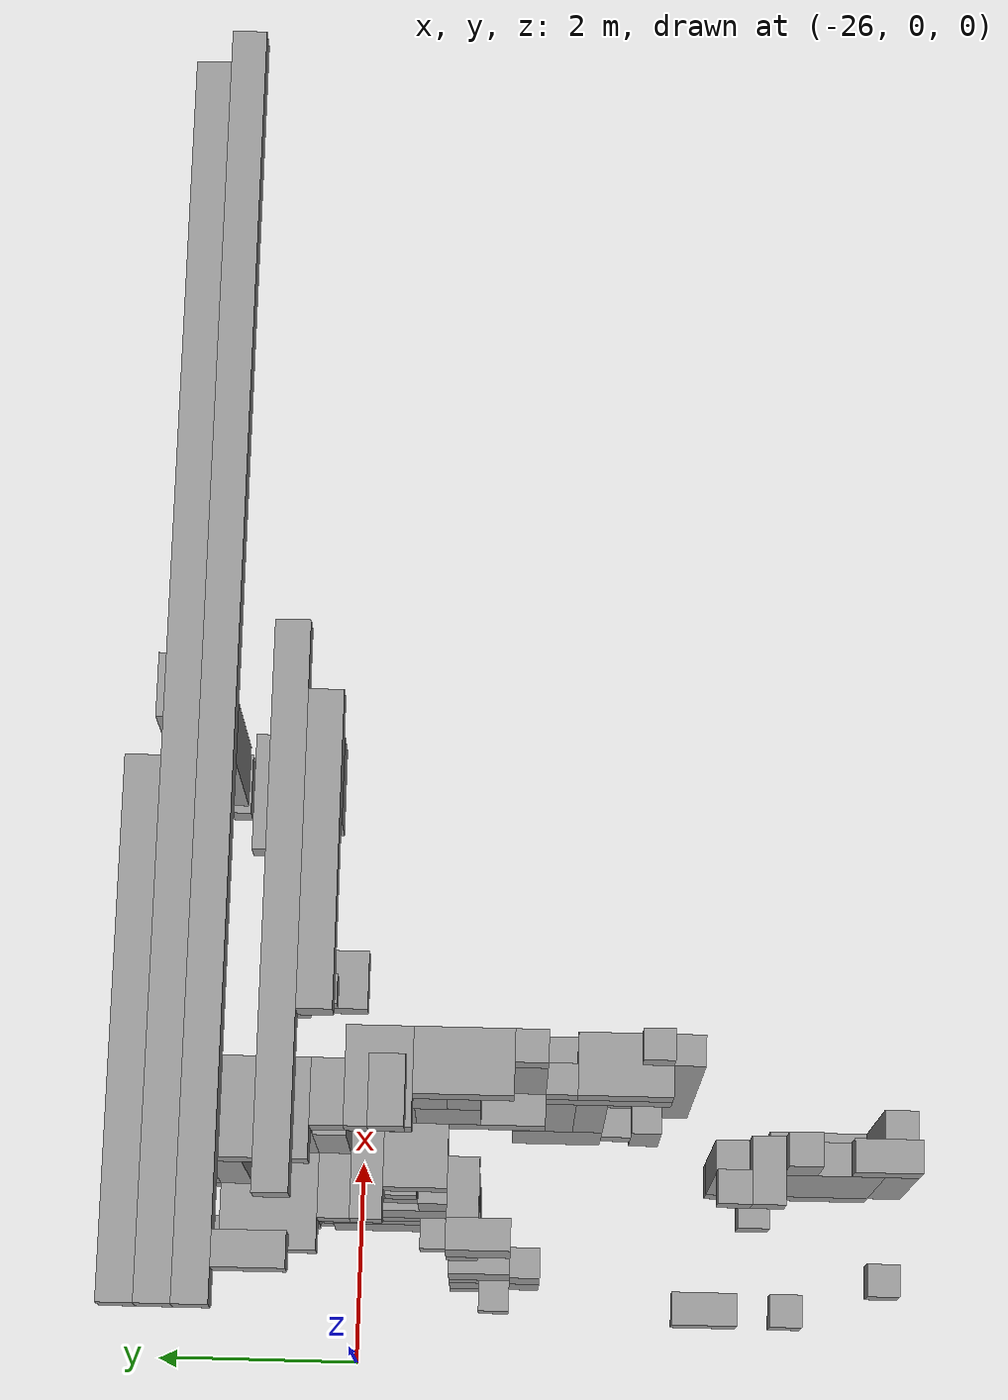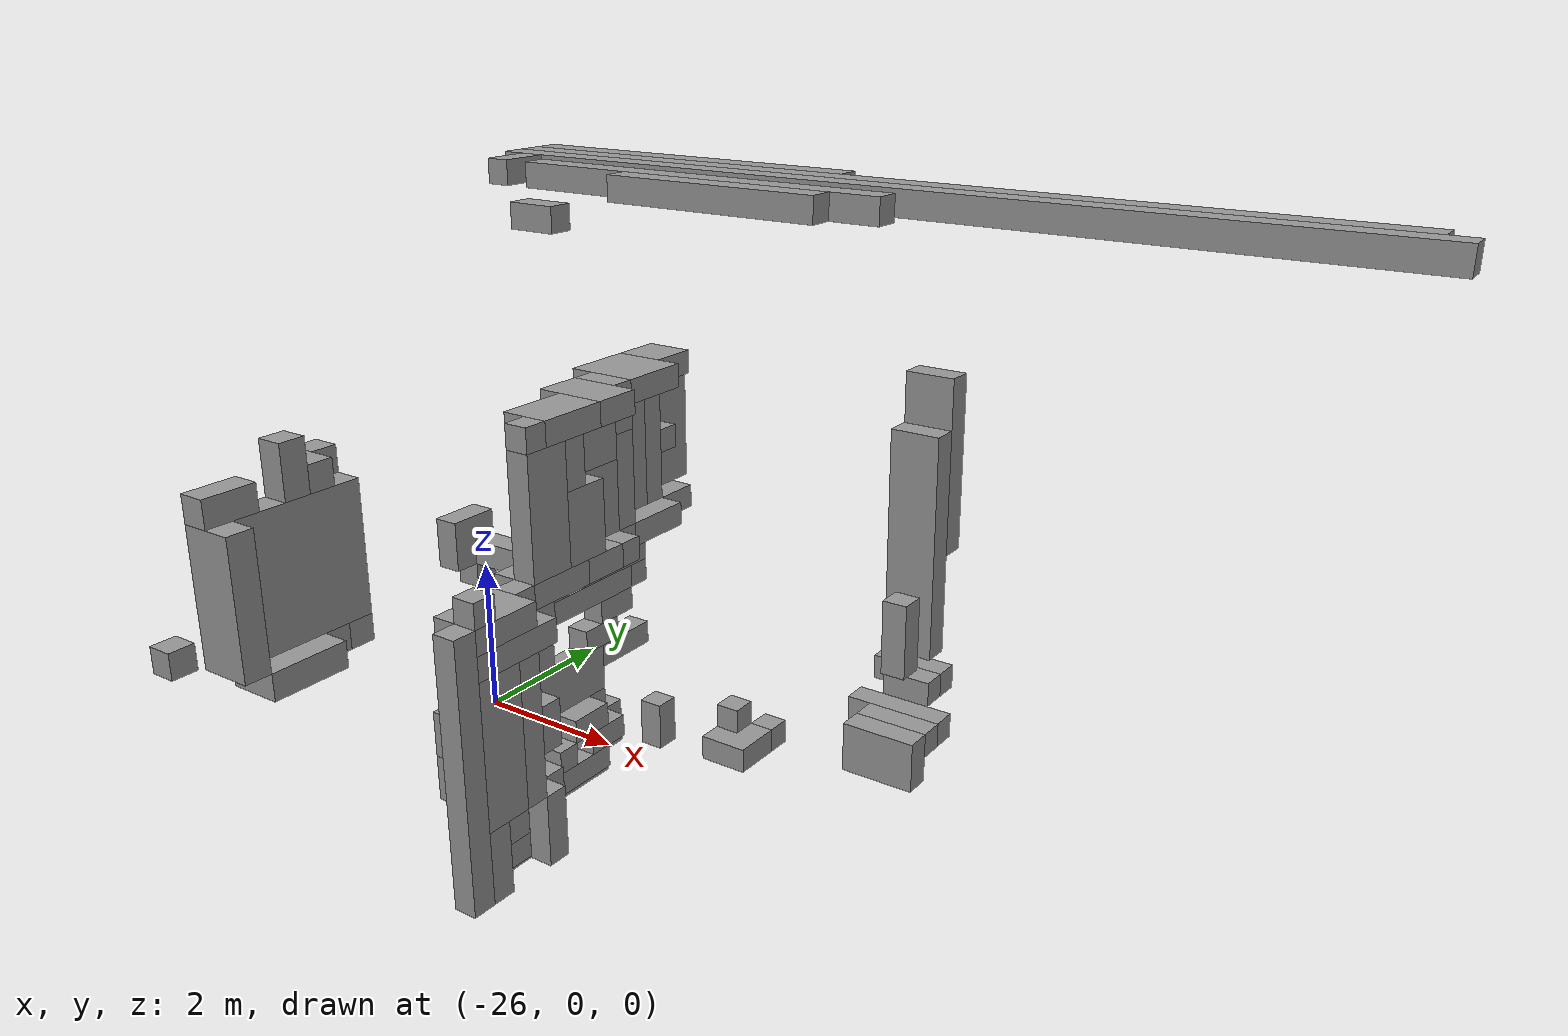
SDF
<sdf version="1.6">
 <world name="bt_world">
  <include><uri>model://sun</uri></include>
  <model name="obstacle_213">
   <static>true</static>
   <pose>-20.55 1.05 7.05 0 0 0</pose>
   <link name="link">
    <collision name="collision"><geometry><box><size>11.1 0.3 0.3</size></box></geometry></collision>
    <visual name="visual">
     <geometry><box><size>11.1 0.3 0.3</size></box></geometry>
     <material><ambient>0.5 0.5 0.5 1</ambient><diffuse>0.6 0.6 0.6 1</diffuse></material>
    </visual>
   </link>
  </model>
  <model name="obstacle_214">
   <static>true</static>
   <pose>-20.7 1.3499999999999999 7.05 0 0 0</pose>
   <link name="link">
    <collision name="collision">
     <geometry><box><size>10.799999999999999 0.3 0.3</size></box></geometry>
    </collision>
    <visual name="visual">
     <geometry><box><size>10.799999999999999 0.3 0.3</size></box></geometry>
     <material><ambient>0.5 0.5 0.5 1</ambient><diffuse>0.6 0.6 0.6 1</diffuse></material>
    </visual>
   </link>
  </model>
  <model name="obstacle_215">
   <static>true</static>
   <pose>-23.849999999999998 1.65 7.05 0 0 0</pose>
   <link name="link">
    <collision name="collision"><geometry><box><size>4.5 0.3 0.3</size></box></geometry></collision>
    <visual name="visual">
     <geometry><box><size>4.5 0.3 0.3</size></box></geometry>
     <material><ambient>0.5 0.5 0.5 1</ambient><diffuse>0.6 0.6 0.6 1</diffuse></material>
    </visual>
   </link>
  </model>
  <model name="obstacle_225">
   <static>true</static>
   <pose>-25.65 -4.05 2.85 0 0 0</pose>
   <link name="link">
    <collision name="collision"><geometry><box><size>0.3 0.3 0.3</size></box></geometry></collision>
    <visual name="visual">
     <geometry><box><size>0.3 0.3 0.3</size></box></geometry>
     <material><ambient>0.5 0.5 0.5 1</ambient><diffuse>0.6 0.6 0.6 1</diffuse></material>
    </visual>
   </link>
  </model>
  <model name="obstacle_226">
   <static>true</static>
   <pose>-25.65 -3.3 2.85 0 0 0</pose>
   <link name="link">
    <collision name="collision"><geometry><box><size>0.3 0.6 0.3</size></box></geometry></collision>
    <visual name="visual">
     <geometry><box><size>0.3 0.6 0.3</size></box></geometry>
     <material><ambient>0.5 0.5 0.5 1</ambient><diffuse>0.6 0.6 0.6 1</diffuse></material>
    </visual>
   </link>
  </model>
  <model name="obstacle_227">
   <static>true</static>
   <pose>-25.65 0.6 7.05 0 0 0</pose>
   <link name="link">
    <collision name="collision"><geometry><box><size>0.3 0.6 0.3</size></box></geometry></collision>
    <visual name="visual">
     <geometry><box><size>0.3 0.6 0.3</size></box></geometry>
     <material><ambient>0.5 0.5 0.5 1</ambient><diffuse>0.6 0.6 0.6 1</diffuse></material>
    </visual>
   </link>
  </model>
  <model name="obstacle_239">
   <static>true</static>
   <pose>-25.349999999999998 -4.95 2.85 0 0 0</pose>
   <link name="link">
    <collision name="collision"><geometry><box><size>0.3 0.3 0.3</size></box></geometry></collision>
    <visual name="visual">
     <geometry><box><size>0.3 0.3 0.3</size></box></geometry>
     <material><ambient>0.5 0.5 0.5 1</ambient><diffuse>0.6 0.6 0.6 1</diffuse></material>
    </visual>
   </link>
  </model>
  <model name="obstacle_240">
   <static>true</static>
   <pose>-25.2 -1.3499999999999999 0.44999999999999996 0 0 0</pose>
   <link name="link">
    <collision name="collision"><geometry><box><size>0.6 0.3 0.3</size></box></geometry></collision>
    <visual name="visual">
     <geometry><box><size>0.6 0.3 0.3</size></box></geometry>
     <material><ambient>0.5 0.5 0.5 1</ambient><diffuse>0.6 0.6 0.6 1</diffuse></material>
    </visual>
   </link>
  </model>
  <model name="obstacle_257">
   <static>true</static>
   <pose>-25.05 -1.3499999999999999 0.0 0 0 0</pose>
   <link name="link">
    <collision name="collision">
     <geometry><box><size>0.3 0.8999999999999999 0.6</size></box></geometry>
    </collision>
    <visual name="visual">
     <geometry><box><size>0.3 0.8999999999999999 0.6</size></box></geometry>
     <material><ambient>0.5 0.5 0.5 1</ambient><diffuse>0.6 0.6 0.6 1</diffuse></material>
    </visual>
   </link>
  </model>
  <model name="obstacle_258">
   <static>true</static>
   <pose>-25.05 -1.65 0.6 0 0 0</pose>
   <link name="link">
    <collision name="collision"><geometry><box><size>0.3 0.3 0.6</size></box></geometry></collision>
    <visual name="visual">
     <geometry><box><size>0.3 0.3 0.6</size></box></geometry>
     <material><ambient>0.5 0.5 0.5 1</ambient><diffuse>0.6 0.6 0.6 1</diffuse></material>
    </visual>
   </link>
  </model>
  <model name="obstacle_259">
   <static>true</static>
   <pose>-25.05 -1.2 -0.44999999999999996 0 0 0</pose>
   <link name="link">
    <collision name="collision"><geometry><box><size>0.3 0.6 0.3</size></box></geometry></collision>
    <visual name="visual">
     <geometry><box><size>0.3 0.6 0.3</size></box></geometry>
     <material><ambient>0.5 0.5 0.5 1</ambient><diffuse>0.6 0.6 0.6 1</diffuse></material>
    </visual>
   </link>
  </model>
  <model name="obstacle_260">
   <static>true</static>
   <pose>-25.05 -1.2 0.8999999999999999 0 0 0</pose>
   <link name="link">
    <collision name="collision"><geometry><box><size>0.3 0.6 0.6</size></box></geometry></collision>
    <visual name="visual">
     <geometry><box><size>0.3 0.6 0.6</size></box></geometry>
     <material><ambient>0.5 0.5 0.5 1</ambient><diffuse>0.6 0.6 0.6 1</diffuse></material>
    </visual>
   </link>
  </model>
  <model name="obstacle_261">
   <static>true</static>
   <pose>-25.05 -1.2 3.0 0 0 0</pose>
   <link name="link">
    <collision name="collision"><geometry><box><size>0.3 0.6 0.6</size></box></geometry></collision>
    <visual name="visual">
     <geometry><box><size>0.3 0.6 0.6</size></box></geometry>
     <material><ambient>0.5 0.5 0.5 1</ambient><diffuse>0.6 0.6 0.6 1</diffuse></material>
    </visual>
   </link>
  </model>
  <model name="obstacle_262">
   <static>true</static>
   <pose>-24.75 -1.05 0.44999999999999996 0 0 0</pose>
   <link name="link">
    <collision name="collision">
     <geometry><box><size>0.8999999999999999 0.3 0.3</size></box></geometry>
    </collision>
    <visual name="visual">
     <geometry><box><size>0.8999999999999999 0.3 0.3</size></box></geometry>
     <material><ambient>0.5 0.5 0.5 1</ambient><diffuse>0.6 0.6 0.6 1</diffuse></material>
    </visual>
   </link>
  </model>
  <model name="obstacle_263">
   <static>true</static>
   <pose>-25.05 -1.05 2.55 0 0 0</pose>
   <link name="link">
    <collision name="collision"><geometry><box><size>0.3 0.3 0.3</size></box></geometry></collision>
    <visual name="visual">
     <geometry><box><size>0.3 0.3 0.3</size></box></geometry>
     <material><ambient>0.5 0.5 0.5 1</ambient><diffuse>0.6 0.6 0.6 1</diffuse></material>
    </visual>
   </link>
  </model>
  <model name="obstacle_264">
   <static>true</static>
   <pose>-24.45 0.75 2.85 0 0 0</pose>
   <link name="link">
    <collision name="collision">
     <geometry><box><size>1.5 0.8999999999999999 0.3</size></box></geometry>
    </collision>
    <visual name="visual">
     <geometry><box><size>1.5 0.8999999999999999 0.3</size></box></geometry>
     <material><ambient>0.5 0.5 0.5 1</ambient><diffuse>0.6 0.6 0.6 1</diffuse></material>
    </visual>
   </link>
  </model>
  <model name="obstacle_265">
   <static>true</static>
   <pose>-22.8 0.44999999999999996 7.05 0 0 0</pose>
   <link name="link">
    <collision name="collision"><geometry><box><size>4.8 0.3 0.3</size></box></geometry></collision>
    <visual name="visual">
     <geometry><box><size>4.8 0.3 0.3</size></box></geometry>
     <material><ambient>0.5 0.5 0.5 1</ambient><diffuse>0.6 0.6 0.6 1</diffuse></material>
    </visual>
   </link>
  </model>
  <model name="obstacle_266">
   <static>true</static>
   <pose>-25.05 1.5 2.85 0 0 0</pose>
   <link name="link">
    <collision name="collision"><geometry><box><size>0.3 0.6 0.3</size></box></geometry></collision>
    <visual name="visual">
     <geometry><box><size>0.3 0.6 0.3</size></box></geometry>
     <material><ambient>0.5 0.5 0.5 1</ambient><diffuse>0.6 0.6 0.6 1</diffuse></material>
    </visual>
   </link>
  </model>
  <model name="obstacle_267">
   <static>true</static>
   <pose>-25.05 1.65 2.4 0 0 0</pose>
   <link name="link">
    <collision name="collision"><geometry><box><size>0.3 0.3 0.6</size></box></geometry></collision>
    <visual name="visual">
     <geometry><box><size>0.3 0.3 0.6</size></box></geometry>
     <material><ambient>0.5 0.5 0.5 1</ambient><diffuse>0.6 0.6 0.6 1</diffuse></material>
    </visual>
   </link>
  </model>
  <model name="obstacle_289">
   <static>true</static>
   <pose>-24.599999999999998 -3.75 2.85 0 0 0</pose>
   <link name="link">
    <collision name="collision"><geometry><box><size>0.6 0.3 0.3</size></box></geometry></collision>
    <visual name="visual">
     <geometry><box><size>0.6 0.3 0.3</size></box></geometry>
     <material><ambient>0.5 0.5 0.5 1</ambient><diffuse>0.6 0.6 0.6 1</diffuse></material>
    </visual>
   </link>
  </model>
  <model name="obstacle_290">
   <static>true</static>
   <pose>-24.599999999999998 -3.75 4.6499999999999995 0 0 0</pose>
   <link name="link">
    <collision name="collision"><geometry><box><size>0.6 0.3 0.3</size></box></geometry></collision>
    <visual name="visual">
     <geometry><box><size>0.6 0.3 0.3</size></box></geometry>
     <material><ambient>0.5 0.5 0.5 1</ambient><diffuse>0.6 0.6 0.6 1</diffuse></material>
    </visual>
   </link>
  </model>
  <model name="obstacle_291">
   <static>true</static>
   <pose>-24.75 -3.4499999999999997 4.6499999999999995 0 0 0</pose>
   <link name="link">
    <collision name="collision"><geometry><box><size>0.3 0.3 0.3</size></box></geometry></collision>
    <visual name="visual">
     <geometry><box><size>0.3 0.3 0.3</size></box></geometry>
     <material><ambient>0.5 0.5 0.5 1</ambient><diffuse>0.6 0.6 0.6 1</diffuse></material>
    </visual>
   </link>
  </model>
  <model name="obstacle_292">
   <static>true</static>
   <pose>-24.75 -1.2 -0.15 0 0 0</pose>
   <link name="link">
    <collision name="collision"><geometry><box><size>0.3 0.6 0.3</size></box></geometry></collision>
    <visual name="visual">
     <geometry><box><size>0.3 0.6 0.3</size></box></geometry>
     <material><ambient>0.5 0.5 0.5 1</ambient><diffuse>0.6 0.6 0.6 1</diffuse></material>
    </visual>
   </link>
  </model>
  <model name="obstacle_293">
   <static>true</static>
   <pose>-24.599999999999998 -1.05 0.15 0 0 0</pose>
   <link name="link">
    <collision name="collision"><geometry><box><size>0.6 0.3 0.3</size></box></geometry></collision>
    <visual name="visual">
     <geometry><box><size>0.6 0.3 0.3</size></box></geometry>
     <material><ambient>0.5 0.5 0.5 1</ambient><diffuse>0.6 0.6 0.6 1</diffuse></material>
    </visual>
   </link>
  </model>
  <model name="obstacle_294">
   <static>true</static>
   <pose>-24.599999999999998 -1.05 2.85 0 0 0</pose>
   <link name="link">
    <collision name="collision"><geometry><box><size>0.6 0.3 0.3</size></box></geometry></collision>
    <visual name="visual">
     <geometry><box><size>0.6 0.3 0.3</size></box></geometry>
     <material><ambient>0.5 0.5 0.5 1</ambient><diffuse>0.6 0.6 0.6 1</diffuse></material>
    </visual>
   </link>
  </model>
  <model name="obstacle_295">
   <static>true</static>
   <pose>-24.599999999999998 -0.75 0.44999999999999996 0 0 0</pose>
   <link name="link">
    <collision name="collision"><geometry><box><size>0.6 0.3 0.3</size></box></geometry></collision>
    <visual name="visual">
     <geometry><box><size>0.6 0.3 0.3</size></box></geometry>
     <material><ambient>0.5 0.5 0.5 1</ambient><diffuse>0.6 0.6 0.6 1</diffuse></material>
    </visual>
   </link>
  </model>
  <model name="obstacle_296">
   <static>true</static>
   <pose>-24.15 -0.15 2.85 0 0 0</pose>
   <link name="link">
    <collision name="collision"><geometry><box><size>1.5 0.3 0.3</size></box></geometry></collision>
    <visual name="visual">
     <geometry><box><size>1.5 0.3 0.3</size></box></geometry>
     <material><ambient>0.5 0.5 0.5 1</ambient><diffuse>0.6 0.6 0.6 1</diffuse></material>
    </visual>
   </link>
  </model>
  <model name="obstacle_297">
   <static>true</static>
   <pose>-24.3 0.15 2.85 0 0 0</pose>
   <link name="link">
    <collision name="collision"><geometry><box><size>1.2 0.3 0.3</size></box></geometry></collision>
    <visual name="visual">
     <geometry><box><size>1.2 0.3 0.3</size></box></geometry>
     <material><ambient>0.5 0.5 0.5 1</ambient><diffuse>0.6 0.6 0.6 1</diffuse></material>
    </visual>
   </link>
  </model>
  <model name="obstacle_298">
   <static>true</static>
   <pose>-24.599999999999998 0.44999999999999996 2.4 0 0 0</pose>
   <link name="link">
    <collision name="collision"><geometry><box><size>0.6 0.3 0.6</size></box></geometry></collision>
    <visual name="visual">
     <geometry><box><size>0.6 0.3 0.6</size></box></geometry>
     <material><ambient>0.5 0.5 0.5 1</ambient><diffuse>0.6 0.6 0.6 1</diffuse></material>
    </visual>
   </link>
  </model>
  <model name="obstacle_299">
   <static>true</static>
   <pose>-24.599999999999998 1.05 1.95 0 0 0</pose>
   <link name="link">
    <collision name="collision"><geometry><box><size>0.6 0.3 0.3</size></box></geometry></collision>
    <visual name="visual">
     <geometry><box><size>0.6 0.3 0.3</size></box></geometry>
     <material><ambient>0.5 0.5 0.5 1</ambient><diffuse>0.6 0.6 0.6 1</diffuse></material>
    </visual>
   </link>
  </model>
  <model name="obstacle_322">
   <static>true</static>
   <pose>-24.3 -4.95 3.75 0 0 0</pose>
   <link name="link">
    <collision name="collision"><geometry><box><size>0.6 0.3 1.5</size></box></geometry></collision>
    <visual name="visual">
     <geometry><box><size>0.6 0.3 1.5</size></box></geometry>
     <material><ambient>0.5 0.5 0.5 1</ambient><diffuse>0.6 0.6 0.6 1</diffuse></material>
    </visual>
   </link>
  </model>
  <model name="obstacle_323">
   <static>true</static>
   <pose>-24.45 -4.8 4.6499999999999995 0 0 0</pose>
   <link name="link">
    <collision name="collision"><geometry><box><size>0.3 0.6 0.3</size></box></geometry></collision>
    <visual name="visual">
     <geometry><box><size>0.3 0.6 0.3</size></box></geometry>
     <material><ambient>0.5 0.5 0.5 1</ambient><diffuse>0.6 0.6 0.6 1</diffuse></material>
    </visual>
   </link>
  </model>
  <model name="obstacle_324">
   <static>true</static>
   <pose>-24.3 -4.35 2.85 0 0 0</pose>
   <link name="link">
    <collision name="collision">
     <geometry><box><size>0.6 0.8999999999999999 0.3</size></box></geometry>
    </collision>
    <visual name="visual">
     <geometry><box><size>0.6 0.8999999999999999 0.3</size></box></geometry>
     <material><ambient>0.5 0.5 0.5 1</ambient><diffuse>0.6 0.6 0.6 1</diffuse></material>
    </visual>
   </link>
  </model>
  <model name="obstacle_325">
   <static>true</static>
   <pose>-24.45 -4.05 3.75 0 0 0</pose>
   <link name="link">
    <collision name="collision"><geometry><box><size>0.3 1.5 1.5</size></box></geometry></collision>
    <visual name="visual">
     <geometry><box><size>0.3 1.5 1.5</size></box></geometry>
     <material><ambient>0.5 0.5 0.5 1</ambient><diffuse>0.6 0.6 0.6 1</diffuse></material>
    </visual>
   </link>
  </model>
  <model name="obstacle_326">
   <static>true</static>
   <pose>-24.45 -4.05 4.8 0 0 0</pose>
   <link name="link">
    <collision name="collision"><geometry><box><size>0.3 0.3 0.6</size></box></geometry></collision>
    <visual name="visual">
     <geometry><box><size>0.3 0.3 0.6</size></box></geometry>
     <material><ambient>0.5 0.5 0.5 1</ambient><diffuse>0.6 0.6 0.6 1</diffuse></material>
    </visual>
   </link>
  </model>
  <model name="obstacle_329">
   <static>true</static>
   <pose>-24.45 -3.4499999999999997 2.85 0 0 0</pose>
   <link name="link">
    <collision name="collision"><geometry><box><size>0.3 0.3 0.3</size></box></geometry></collision>
    <visual name="visual">
     <geometry><box><size>0.3 0.3 0.3</size></box></geometry>
     <material><ambient>0.5 0.5 0.5 1</ambient><diffuse>0.6 0.6 0.6 1</diffuse></material>
    </visual>
   </link>
  </model>
  <model name="obstacle_331">
   <static>true</static>
   <pose>-24.45 -0.44999999999999996 -0.3 0 0 0</pose>
   <link name="link">
    <collision name="collision"><geometry><box><size>0.3 1.5 0.6</size></box></geometry></collision>
    <visual name="visual">
     <geometry><box><size>0.3 1.5 0.6</size></box></geometry>
     <material><ambient>0.5 0.5 0.5 1</ambient><diffuse>0.6 0.6 0.6 1</diffuse></material>
    </visual>
   </link>
  </model>
  <model name="obstacle_332">
   <static>true</static>
   <pose>-24.45 -0.44999999999999996 0.8999999999999999 0 0 0</pose>
   <link name="link">
    <collision name="collision"><geometry><box><size>0.3 1.5 0.6</size></box></geometry></collision>
    <visual name="visual">
     <geometry><box><size>0.3 1.5 0.6</size></box></geometry>
     <material><ambient>0.5 0.5 0.5 1</ambient><diffuse>0.6 0.6 0.6 1</diffuse></material>
    </visual>
   </link>
  </model>
  <model name="obstacle_333">
   <static>true</static>
   <pose>-24.45 -0.8999999999999999 1.5 0 0 0</pose>
   <link name="link">
    <collision name="collision"><geometry><box><size>0.3 0.6 0.6</size></box></geometry></collision>
    <visual name="visual">
     <geometry><box><size>0.3 0.6 0.6</size></box></geometry>
     <material><ambient>0.5 0.5 0.5 1</ambient><diffuse>0.6 0.6 0.6 1</diffuse></material>
    </visual>
   </link>
  </model>
  <model name="obstacle_334">
   <static>true</static>
   <pose>-24.3 -0.75 0.15 0 0 0</pose>
   <link name="link">
    <collision name="collision"><geometry><box><size>0.6 0.3 0.3</size></box></geometry></collision>
    <visual name="visual">
     <geometry><box><size>0.6 0.3 0.3</size></box></geometry>
     <material><ambient>0.5 0.5 0.5 1</ambient><diffuse>0.6 0.6 0.6 1</diffuse></material>
    </visual>
   </link>
  </model>
  <model name="obstacle_335">
   <static>true</static>
   <pose>-24.0 -0.6 2.85 0 0 0</pose>
   <link name="link">
    <collision name="collision"><geometry><box><size>1.2 0.6 0.3</size></box></geometry></collision>
    <visual name="visual">
     <geometry><box><size>1.2 0.6 0.3</size></box></geometry>
     <material><ambient>0.5 0.5 0.5 1</ambient><diffuse>0.6 0.6 0.6 1</diffuse></material>
    </visual>
   </link>
  </model>
  <model name="obstacle_337">
   <static>true</static>
   <pose>-24.45 0.0 0.15 0 0 0</pose>
   <link name="link">
    <collision name="collision"><geometry><box><size>0.3 1.2 0.3</size></box></geometry></collision>
    <visual name="visual">
     <geometry><box><size>0.3 1.2 0.3</size></box></geometry>
     <material><ambient>0.5 0.5 0.5 1</ambient><diffuse>0.6 0.6 0.6 1</diffuse></material>
    </visual>
   </link>
  </model>
  <model name="obstacle_338">
   <static>true</static>
   <pose>-24.3 -0.3 0.44999999999999996 0 0 0</pose>
   <link name="link">
    <collision name="collision"><geometry><box><size>0.6 0.6 0.3</size></box></geometry></collision>
    <visual name="visual">
     <geometry><box><size>0.6 0.6 0.3</size></box></geometry>
     <material><ambient>0.5 0.5 0.5 1</ambient><diffuse>0.6 0.6 0.6 1</diffuse></material>
    </visual>
   </link>
  </model>
  <model name="obstacle_339">
   <static>true</static>
   <pose>-24.45 0.15 1.95 0 0 0</pose>
   <link name="link">
    <collision name="collision"><geometry><box><size>0.3 1.5 0.3</size></box></geometry></collision>
    <visual name="visual">
     <geometry><box><size>0.3 1.5 0.3</size></box></geometry>
     <material><ambient>0.5 0.5 0.5 1</ambient><diffuse>0.6 0.6 0.6 1</diffuse></material>
    </visual>
   </link>
  </model>
  <model name="obstacle_340">
   <static>true</static>
   <pose>-24.45 -0.44999999999999996 2.25 0 0 0</pose>
   <link name="link">
    <collision name="collision"><geometry><box><size>0.3 0.3 0.3</size></box></geometry></collision>
    <visual name="visual">
     <geometry><box><size>0.3 0.3 0.3</size></box></geometry>
     <material><ambient>0.5 0.5 0.5 1</ambient><diffuse>0.6 0.6 0.6 1</diffuse></material>
    </visual>
   </link>
  </model>
  <model name="obstacle_341">
   <static>true</static>
   <pose>-24.3 -0.44999999999999996 6.75 0 0 0</pose>
   <link name="link">
    <collision name="collision"><geometry><box><size>0.6 0.3 0.3</size></box></geometry></collision>
    <visual name="visual">
     <geometry><box><size>0.6 0.3 0.3</size></box></geometry>
     <material><ambient>0.5 0.5 0.5 1</ambient><diffuse>0.6 0.6 0.6 1</diffuse></material>
    </visual>
   </link>
  </model>
  <model name="obstacle_342">
   <static>true</static>
   <pose>-24.45 0.15 0.44999999999999996 0 0 0</pose>
   <link name="link">
    <collision name="collision"><geometry><box><size>0.3 0.3 0.3</size></box></geometry></collision>
    <visual name="visual">
     <geometry><box><size>0.3 0.3 0.3</size></box></geometry>
     <material><ambient>0.5 0.5 0.5 1</ambient><diffuse>0.6 0.6 0.6 1</diffuse></material>
    </visual>
   </link>
  </model>
  <model name="obstacle_343">
   <static>true</static>
   <pose>-24.45 0.3 1.3499999999999999 0 0 0</pose>
   <link name="link">
    <collision name="collision"><geometry><box><size>0.3 0.6 0.3</size></box></geometry></collision>
    <visual name="visual">
     <geometry><box><size>0.3 0.6 0.3</size></box></geometry>
     <material><ambient>0.5 0.5 0.5 1</ambient><diffuse>0.6 0.6 0.6 1</diffuse></material>
    </visual>
   </link>
  </model>
  <model name="obstacle_344">
   <static>true</static>
   <pose>-24.45 0.15 2.25 0 0 0</pose>
   <link name="link">
    <collision name="collision"><geometry><box><size>0.3 0.3 0.3</size></box></geometry></collision>
    <visual name="visual">
     <geometry><box><size>0.3 0.3 0.3</size></box></geometry>
     <material><ambient>0.5 0.5 0.5 1</ambient><diffuse>0.6 0.6 0.6 1</diffuse></material>
    </visual>
   </link>
  </model>
  <model name="obstacle_345">
   <static>true</static>
   <pose>-24.45 0.44999999999999996 -0.15 0 0 0</pose>
   <link name="link">
    <collision name="collision"><geometry><box><size>0.3 0.3 0.3</size></box></geometry></collision>
    <visual name="visual">
     <geometry><box><size>0.3 0.3 0.3</size></box></geometry>
     <material><ambient>0.5 0.5 0.5 1</ambient><diffuse>0.6 0.6 0.6 1</diffuse></material>
    </visual>
   </link>
  </model>
  <model name="obstacle_346">
   <static>true</static>
   <pose>-24.45 0.75 1.05 0 0 0</pose>
   <link name="link">
    <collision name="collision">
     <geometry><box><size>0.3 0.8999999999999999 0.3</size></box></geometry>
    </collision>
    <visual name="visual">
     <geometry><box><size>0.3 0.8999999999999999 0.3</size></box></geometry>
     <material><ambient>0.5 0.5 0.5 1</ambient><diffuse>0.6 0.6 0.6 1</diffuse></material>
    </visual>
   </link>
  </model>
  <model name="obstacle_347">
   <static>true</static>
   <pose>-24.45 0.6 1.65 0 0 0</pose>
   <link name="link">
    <collision name="collision"><geometry><box><size>0.3 0.6 0.3</size></box></geometry></collision>
    <visual name="visual">
     <geometry><box><size>0.3 0.6 0.3</size></box></geometry>
     <material><ambient>0.5 0.5 0.5 1</ambient><diffuse>0.6 0.6 0.6 1</diffuse></material>
    </visual>
   </link>
  </model>
  <model name="obstacle_348">
   <static>true</static>
   <pose>-24.15 0.75 4.6499999999999995 0 0 0</pose>
   <link name="link">
    <collision name="collision">
     <geometry><box><size>0.8999999999999999 0.8999999999999999 0.3</size></box></geometry>
    </collision>
    <visual name="visual">
     <geometry><box><size>0.8999999999999999 0.8999999999999999 0.3</size></box></geometry>
     <material><ambient>0.5 0.5 0.5 1</ambient><diffuse>0.6 0.6 0.6 1</diffuse></material>
    </visual>
   </link>
  </model>
  <model name="obstacle_349">
   <static>true</static>
   <pose>-24.45 0.8999999999999999 2.25 0 0 0</pose>
   <link name="link">
    <collision name="collision"><geometry><box><size>0.3 0.6 0.3</size></box></geometry></collision>
    <visual name="visual">
     <geometry><box><size>0.3 0.6 0.3</size></box></geometry>
     <material><ambient>0.5 0.5 0.5 1</ambient><diffuse>0.6 0.6 0.6 1</diffuse></material>
    </visual>
   </link>
  </model>
  <model name="obstacle_350">
   <static>true</static>
   <pose>-24.3 1.05 3.75 0 0 0</pose>
   <link name="link">
    <collision name="collision"><geometry><box><size>0.6 0.3 1.5</size></box></geometry></collision>
    <visual name="visual">
     <geometry><box><size>0.6 0.3 1.5</size></box></geometry>
     <material><ambient>0.5 0.5 0.5 1</ambient><diffuse>0.6 0.6 0.6 1</diffuse></material>
    </visual>
   </link>
  </model>
  <model name="obstacle_351">
   <static>true</static>
   <pose>-24.3 1.5 2.85 0 0 0</pose>
   <link name="link">
    <collision name="collision"><geometry><box><size>0.6 0.6 0.3</size></box></geometry></collision>
    <visual name="visual">
     <geometry><box><size>0.6 0.6 0.3</size></box></geometry>
     <material><ambient>0.5 0.5 0.5 1</ambient><diffuse>0.6 0.6 0.6 1</diffuse></material>
    </visual>
   </link>
  </model>
  <model name="obstacle_352">
   <static>true</static>
   <pose>-24.45 1.65 3.75 0 0 0</pose>
   <link name="link">
    <collision name="collision">
     <geometry><box><size>0.3 0.8999999999999999 1.5</size></box></geometry>
    </collision>
    <visual name="visual">
     <geometry><box><size>0.3 0.8999999999999999 1.5</size></box></geometry>
     <material><ambient>0.5 0.5 0.5 1</ambient><diffuse>0.6 0.6 0.6 1</diffuse></material>
    </visual>
   </link>
  </model>
  <model name="obstacle_353">
   <static>true</static>
   <pose>-24.3 1.5 4.6499999999999995 0 0 0</pose>
   <link name="link">
    <collision name="collision"><geometry><box><size>0.6 0.6 0.3</size></box></geometry></collision>
    <visual name="visual">
     <geometry><box><size>0.6 0.6 0.3</size></box></geometry>
     <material><ambient>0.5 0.5 0.5 1</ambient><diffuse>0.6 0.6 0.6 1</diffuse></material>
    </visual>
   </link>
  </model>
  <model name="obstacle_382">
   <static>true</static>
   <pose>-24.15 -0.44999999999999996 -0.15 0 0 0</pose>
   <link name="link">
    <collision name="collision">
     <geometry><box><size>0.3 0.8999999999999999 0.3</size></box></geometry>
    </collision>
    <visual name="visual">
     <geometry><box><size>0.3 0.8999999999999999 0.3</size></box></geometry>
     <material><ambient>0.5 0.5 0.5 1</ambient><diffuse>0.6 0.6 0.6 1</diffuse></material>
    </visual>
   </link>
  </model>
  <model name="obstacle_383">
   <static>true</static>
   <pose>-23.849999999999998 -0.3 4.6499999999999995 0 0 0</pose>
   <link name="link">
    <collision name="collision">
     <geometry><box><size>0.8999999999999999 0.6 0.3</size></box></geometry>
    </collision>
    <visual name="visual">
     <geometry><box><size>0.8999999999999999 0.6 0.3</size></box></geometry>
     <material><ambient>0.5 0.5 0.5 1</ambient><diffuse>0.6 0.6 0.6 1</diffuse></material>
    </visual>
   </link>
  </model>
  <model name="obstacle_385">
   <static>true</static>
   <pose>-24.15 0.0 0.15 0 0 0</pose>
   <link name="link">
    <collision name="collision"><geometry><box><size>0.3 0.6 0.3</size></box></geometry></collision>
    <visual name="visual">
     <geometry><box><size>0.3 0.6 0.3</size></box></geometry>
     <material><ambient>0.5 0.5 0.5 1</ambient><diffuse>0.6 0.6 0.6 1</diffuse></material>
    </visual>
   </link>
  </model>
  <model name="obstacle_386">
   <static>true</static>
   <pose>-24.0 0.15 3.5999999999999996 0 0 0</pose>
   <link name="link">
    <collision name="collision"><geometry><box><size>0.6 0.3 1.2</size></box></geometry></collision>
    <visual name="visual">
     <geometry><box><size>0.6 0.3 1.2</size></box></geometry>
     <material><ambient>0.5 0.5 0.5 1</ambient><diffuse>0.6 0.6 0.6 1</diffuse></material>
    </visual>
   </link>
  </model>
  <model name="obstacle_387">
   <static>true</static>
   <pose>-24.0 0.15 4.6499999999999995 0 0 0</pose>
   <link name="link">
    <collision name="collision"><geometry><box><size>0.6 0.3 0.3</size></box></geometry></collision>
    <visual name="visual">
     <geometry><box><size>0.6 0.3 0.3</size></box></geometry>
     <material><ambient>0.5 0.5 0.5 1</ambient><diffuse>0.6 0.6 0.6 1</diffuse></material>
    </visual>
   </link>
  </model>
  <model name="obstacle_388">
   <static>true</static>
   <pose>-24.15 0.6 3.75 0 0 0</pose>
   <link name="link">
    <collision name="collision"><geometry><box><size>0.3 0.6 1.5</size></box></geometry></collision>
    <visual name="visual">
     <geometry><box><size>0.3 0.6 1.5</size></box></geometry>
     <material><ambient>0.5 0.5 0.5 1</ambient><diffuse>0.6 0.6 0.6 1</diffuse></material>
    </visual>
   </link>
  </model>
  <model name="obstacle_389">
   <static>true</static>
   <pose>-24.15 1.3499999999999999 3.75 0 0 0</pose>
   <link name="link">
    <collision name="collision"><geometry><box><size>0.3 0.3 0.3</size></box></geometry></collision>
    <visual name="visual">
     <geometry><box><size>0.3 0.3 0.3</size></box></geometry>
     <material><ambient>0.5 0.5 0.5 1</ambient><diffuse>0.6 0.6 0.6 1</diffuse></material>
    </visual>
   </link>
  </model>
  <model name="obstacle_408">
   <static>true</static>
   <pose>-23.7 -1.3499999999999999 2.85 0 0 0</pose>
   <link name="link">
    <collision name="collision">
     <geometry><box><size>0.6 0.8999999999999999 0.3</size></box></geometry>
    </collision>
    <visual name="visual">
     <geometry><box><size>0.6 0.8999999999999999 0.3</size></box></geometry>
     <material><ambient>0.5 0.5 0.5 1</ambient><diffuse>0.6 0.6 0.6 1</diffuse></material>
    </visual>
   </link>
  </model>
  <model name="obstacle_409">
   <static>true</static>
   <pose>-23.7 -1.05 4.6499999999999995 0 0 0</pose>
   <link name="link">
    <collision name="collision">
     <geometry><box><size>0.6 0.8999999999999999 0.3</size></box></geometry>
    </collision>
    <visual name="visual">
     <geometry><box><size>0.6 0.8999999999999999 0.3</size></box></geometry>
     <material><ambient>0.5 0.5 0.5 1</ambient><diffuse>0.6 0.6 0.6 1</diffuse></material>
    </visual>
   </link>
  </model>
  <model name="obstacle_410">
   <static>true</static>
   <pose>-23.7 -0.8999999999999999 3.4499999999999997 0 0 0</pose>
   <link name="link">
    <collision name="collision">
     <geometry><box><size>0.6 0.6 0.8999999999999999</size></box></geometry>
    </collision>
    <visual name="visual">
     <geometry><box><size>0.6 0.6 0.8999999999999999</size></box></geometry>
     <material><ambient>0.5 0.5 0.5 1</ambient><diffuse>0.6 0.6 0.6 1</diffuse></material>
    </visual>
   </link>
  </model>
  <model name="obstacle_411">
   <static>true</static>
   <pose>-23.7 -1.05 4.2 0 0 0</pose>
   <link name="link">
    <collision name="collision"><geometry><box><size>0.6 0.3 0.6</size></box></geometry></collision>
    <visual name="visual">
     <geometry><box><size>0.6 0.3 0.6</size></box></geometry>
     <material><ambient>0.5 0.5 0.5 1</ambient><diffuse>0.6 0.6 0.6 1</diffuse></material>
    </visual>
   </link>
  </model>
  <model name="obstacle_412">
   <static>true</static>
   <pose>-23.849999999999998 -0.44999999999999996 4.2 0 0 0</pose>
   <link name="link">
    <collision name="collision">
     <geometry><box><size>0.3 0.8999999999999999 0.6</size></box></geometry>
    </collision>
    <visual name="visual">
     <geometry><box><size>0.3 0.8999999999999999 0.6</size></box></geometry>
     <material><ambient>0.5 0.5 0.5 1</ambient><diffuse>0.6 0.6 0.6 1</diffuse></material>
    </visual>
   </link>
  </model>
  <model name="obstacle_413">
   <static>true</static>
   <pose>-23.849999999999998 -0.3 3.4499999999999997 0 0 0</pose>
   <link name="link">
    <collision name="collision">
     <geometry><box><size>0.3 0.6 0.8999999999999999</size></box></geometry>
    </collision>
    <visual name="visual">
     <geometry><box><size>0.3 0.6 0.8999999999999999</size></box></geometry>
     <material><ambient>0.5 0.5 0.5 1</ambient><diffuse>0.6 0.6 0.6 1</diffuse></material>
    </visual>
   </link>
  </model>
  <model name="obstacle_415">
   <static>true</static>
   <pose>-23.849999999999998 0.15 4.35 0 0 0</pose>
   <link name="link">
    <collision name="collision"><geometry><box><size>0.3 0.3 0.3</size></box></geometry></collision>
    <visual name="visual">
     <geometry><box><size>0.3 0.3 0.3</size></box></geometry>
     <material><ambient>0.5 0.5 0.5 1</ambient><diffuse>0.6 0.6 0.6 1</diffuse></material>
    </visual>
   </link>
  </model>
  <model name="obstacle_434">
   <static>true</static>
   <pose>-23.4 -2.85 0.15 0 0 0</pose>
   <link name="link">
    <collision name="collision">
     <geometry><box><size>0.6 0.3 0.8999999999999999</size></box></geometry>
    </collision>
    <visual name="visual">
     <geometry><box><size>0.6 0.3 0.8999999999999999</size></box></geometry>
     <material><ambient>0.5 0.5 0.5 1</ambient><diffuse>0.6 0.6 0.6 1</diffuse></material>
    </visual>
   </link>
  </model>
  <model name="obstacle_435">
   <static>true</static>
   <pose>-23.4 -2.4 2.55 0 0 0</pose>
   <link name="link">
    <collision name="collision"><geometry><box><size>0.6 1.2 0.3</size></box></geometry></collision>
    <visual name="visual">
     <geometry><box><size>0.6 1.2 0.3</size></box></geometry>
     <material><ambient>0.5 0.5 0.5 1</ambient><diffuse>0.6 0.6 0.6 1</diffuse></material>
    </visual>
   </link>
  </model>
  <model name="obstacle_436">
   <static>true</static>
   <pose>-23.4 -2.55 2.85 0 0 0</pose>
   <link name="link">
    <collision name="collision">
     <geometry><box><size>0.6 0.8999999999999999 0.3</size></box></geometry>
    </collision>
    <visual name="visual">
     <geometry><box><size>0.6 0.8999999999999999 0.3</size></box></geometry>
     <material><ambient>0.5 0.5 0.5 1</ambient><diffuse>0.6 0.6 0.6 1</diffuse></material>
    </visual>
   </link>
  </model>
  <model name="obstacle_437">
   <static>true</static>
   <pose>-23.4 -2.55 0.15 0 0 0</pose>
   <link name="link">
    <collision name="collision"><geometry><box><size>0.6 0.3 0.3</size></box></geometry></collision>
    <visual name="visual">
     <geometry><box><size>0.6 0.3 0.3</size></box></geometry>
     <material><ambient>0.5 0.5 0.5 1</ambient><diffuse>0.6 0.6 0.6 1</diffuse></material>
    </visual>
   </link>
  </model>
  <model name="obstacle_439">
   <static>true</static>
   <pose>-23.55 -1.95 0.15 0 0 0</pose>
   <link name="link">
    <collision name="collision">
     <geometry><box><size>0.3 0.8999999999999999 0.8999999999999999</size></box></geometry>
    </collision>
    <visual name="visual">
     <geometry><box><size>0.3 0.8999999999999999 0.8999999999999999</size></box></geometry>
     <material><ambient>0.5 0.5 0.5 1</ambient><diffuse>0.6 0.6 0.6 1</diffuse></material>
    </visual>
   </link>
  </model>
  <model name="obstacle_440">
   <static>true</static>
   <pose>-23.4 -2.25 1.5 0 0 0</pose>
   <link name="link">
    <collision name="collision">
     <geometry><box><size>0.6 0.3 1.7999999999999998</size></box></geometry>
    </collision>
    <visual name="visual">
     <geometry><box><size>0.6 0.3 1.7999999999999998</size></box></geometry>
     <material><ambient>0.5 0.5 0.5 1</ambient><diffuse>0.6 0.6 0.6 1</diffuse></material>
    </visual>
   </link>
  </model>
  <model name="obstacle_441">
   <static>true</static>
   <pose>-23.55 -1.95 1.5 0 0 0</pose>
   <link name="link">
    <collision name="collision">
     <geometry><box><size>0.3 0.3 1.7999999999999998</size></box></geometry>
    </collision>
    <visual name="visual">
     <geometry><box><size>0.3 0.3 1.7999999999999998</size></box></geometry>
     <material><ambient>0.5 0.5 0.5 1</ambient><diffuse>0.6 0.6 0.6 1</diffuse></material>
    </visual>
   </link>
  </model>
  <model name="obstacle_442">
   <static>true</static>
   <pose>-23.55 -1.95 2.85 0 0 0</pose>
   <link name="link">
    <collision name="collision"><geometry><box><size>0.3 0.3 0.3</size></box></geometry></collision>
    <visual name="visual">
     <geometry><box><size>0.3 0.3 0.3</size></box></geometry>
     <material><ambient>0.5 0.5 0.5 1</ambient><diffuse>0.6 0.6 0.6 1</diffuse></material>
    </visual>
   </link>
  </model>
  <model name="obstacle_444">
   <static>true</static>
   <pose>-23.55 -1.65 1.2 0 0 0</pose>
   <link name="link">
    <collision name="collision"><geometry><box><size>0.3 0.3 0.6</size></box></geometry></collision>
    <visual name="visual">
     <geometry><box><size>0.3 0.3 0.6</size></box></geometry>
     <material><ambient>0.5 0.5 0.5 1</ambient><diffuse>0.6 0.6 0.6 1</diffuse></material>
    </visual>
   </link>
  </model>
  <model name="obstacle_445">
   <static>true</static>
   <pose>-23.55 -1.65 2.55 0 0 0</pose>
   <link name="link">
    <collision name="collision"><geometry><box><size>0.3 0.3 0.3</size></box></geometry></collision>
    <visual name="visual">
     <geometry><box><size>0.3 0.3 0.3</size></box></geometry>
     <material><ambient>0.5 0.5 0.5 1</ambient><diffuse>0.6 0.6 0.6 1</diffuse></material>
    </visual>
   </link>
  </model>
  <model name="obstacle_446">
   <static>true</static>
   <pose>-23.55 -1.5 3.75 0 0 0</pose>
   <link name="link">
    <collision name="collision"><geometry><box><size>0.3 0.6 1.5</size></box></geometry></collision>
    <visual name="visual">
     <geometry><box><size>0.3 0.6 1.5</size></box></geometry>
     <material><ambient>0.5 0.5 0.5 1</ambient><diffuse>0.6 0.6 0.6 1</diffuse></material>
    </visual>
   </link>
  </model>
  <model name="obstacle_447">
   <static>true</static>
   <pose>-23.55 -1.65 4.6499999999999995 0 0 0</pose>
   <link name="link">
    <collision name="collision"><geometry><box><size>0.3 0.3 0.3</size></box></geometry></collision>
    <visual name="visual">
     <geometry><box><size>0.3 0.3 0.3</size></box></geometry>
     <material><ambient>0.5 0.5 0.5 1</ambient><diffuse>0.6 0.6 0.6 1</diffuse></material>
    </visual>
   </link>
  </model>
  <model name="obstacle_449">
   <static>true</static>
   <pose>-22.349999999999998 0.15 7.05 0 0 0</pose>
   <link name="link">
    <collision name="collision">
     <geometry><box><size>2.6999999999999997 0.3 0.3</size></box></geometry>
    </collision>
    <visual name="visual">
     <geometry><box><size>2.6999999999999997 0.3 0.3</size></box></geometry>
     <material><ambient>0.5 0.5 0.5 1</ambient><diffuse>0.6 0.6 0.6 1</diffuse></material>
    </visual>
   </link>
  </model>
  <model name="obstacle_450">
   <static>true</static>
   <pose>-23.55 0.44999999999999996 0.3 0 0 0</pose>
   <link name="link">
    <collision name="collision"><geometry><box><size>0.3 0.3 0.6</size></box></geometry></collision>
    <visual name="visual">
     <geometry><box><size>0.3 0.3 0.6</size></box></geometry>
     <material><ambient>0.5 0.5 0.5 1</ambient><diffuse>0.6 0.6 0.6 1</diffuse></material>
    </visual>
   </link>
  </model>
  <model name="obstacle_478">
   <static>true</static>
   <pose>-23.25 -3.15 1.3499999999999999 0 0 0</pose>
   <link name="link">
    <collision name="collision"><geometry><box><size>0.3 0.3 3.3</size></box></geometry></collision>
    <visual name="visual">
     <geometry><box><size>0.3 0.3 3.3</size></box></geometry>
     <material><ambient>0.5 0.5 0.5 1</ambient><diffuse>0.6 0.6 0.6 1</diffuse></material>
    </visual>
   </link>
  </model>
  <model name="obstacle_480">
   <static>true</static>
   <pose>-23.25 -2.6999999999999997 1.5 0 0 0</pose>
   <link name="link">
    <collision name="collision">
     <geometry><box><size>0.3 0.6 1.7999999999999998</size></box></geometry>
    </collision>
    <visual name="visual">
     <geometry><box><size>0.3 0.6 1.7999999999999998</size></box></geometry>
     <material><ambient>0.5 0.5 0.5 1</ambient><diffuse>0.6 0.6 0.6 1</diffuse></material>
    </visual>
   </link>
  </model>
  <model name="obstacle_481">
   <static>true</static>
   <pose>-23.25 -2.85 3.15 0 0 0</pose>
   <link name="link">
    <collision name="collision"><geometry><box><size>0.3 0.3 0.3</size></box></geometry></collision>
    <visual name="visual">
     <geometry><box><size>0.3 0.3 0.3</size></box></geometry>
     <material><ambient>0.5 0.5 0.5 1</ambient><diffuse>0.6 0.6 0.6 1</diffuse></material>
    </visual>
   </link>
  </model>
  <model name="obstacle_482">
   <static>true</static>
   <pose>-23.25 -2.55 0.44999999999999996 0 0 0</pose>
   <link name="link">
    <collision name="collision"><geometry><box><size>0.3 0.3 0.3</size></box></geometry></collision>
    <visual name="visual">
     <geometry><box><size>0.3 0.3 0.3</size></box></geometry>
     <material><ambient>0.5 0.5 0.5 1</ambient><diffuse>0.6 0.6 0.6 1</diffuse></material>
    </visual>
   </link>
  </model>
  <model name="obstacle_483">
   <static>true</static>
   <pose>-23.25 -1.95 0.15 0 0 0</pose>
   <link name="link">
    <collision name="collision">
     <geometry><box><size>0.3 0.3 0.8999999999999999</size></box></geometry>
    </collision>
    <visual name="visual">
     <geometry><box><size>0.3 0.3 0.8999999999999999</size></box></geometry>
     <material><ambient>0.5 0.5 0.5 1</ambient><diffuse>0.6 0.6 0.6 1</diffuse></material>
    </visual>
   </link>
  </model>
  <model name="obstacle_566">
   <static>true</static>
   <pose>-22.2 0.3 0.44999999999999996 0 0 0</pose>
   <link name="link">
    <collision name="collision"><geometry><box><size>0.6 0.6 0.3</size></box></geometry></collision>
    <visual name="visual">
     <geometry><box><size>0.6 0.6 0.3</size></box></geometry>
     <material><ambient>0.5 0.5 0.5 1</ambient><diffuse>0.6 0.6 0.6 1</diffuse></material>
    </visual>
   </link>
  </model>
  <model name="obstacle_567">
   <static>true</static>
   <pose>-22.349999999999998 0.44999999999999996 0.75 0 0 0</pose>
   <link name="link">
    <collision name="collision"><geometry><box><size>0.3 0.3 0.3</size></box></geometry></collision>
    <visual name="visual">
     <geometry><box><size>0.3 0.3 0.3</size></box></geometry>
     <material><ambient>0.5 0.5 0.5 1</ambient><diffuse>0.6 0.6 0.6 1</diffuse></material>
    </visual>
   </link>
  </model>
  <model name="obstacle_568">
   <static>true</static>
   <pose>-22.349999999999998 0.75 0.15 0 0 0</pose>
   <link name="link">
    <collision name="collision"><geometry><box><size>0.3 0.3 0.3</size></box></geometry></collision>
    <visual name="visual">
     <geometry><box><size>0.3 0.3 0.3</size></box></geometry>
     <material><ambient>0.5 0.5 0.5 1</ambient><diffuse>0.6 0.6 0.6 1</diffuse></material>
    </visual>
   </link>
  </model>
  <model name="obstacle_615">
   <static>true</static>
   <pose>-22.05 0.75 0.44999999999999996 0 0 0</pose>
   <link name="link">
    <collision name="collision"><geometry><box><size>0.3 0.3 0.3</size></box></geometry></collision>
    <visual name="visual">
     <geometry><box><size>0.3 0.3 0.3</size></box></geometry>
     <material><ambient>0.5 0.5 0.5 1</ambient><diffuse>0.6 0.6 0.6 1</diffuse></material>
    </visual>
   </link>
  </model>
  <model name="obstacle_812">
   <static>true</static>
   <pose>-20.4 1.05 1.05 0 0 0</pose>
   <link name="link">
    <collision name="collision"><geometry><box><size>1.2 0.3 0.3</size></box></geometry></collision>
    <visual name="visual">
     <geometry><box><size>1.2 0.3 0.3</size></box></geometry>
     <material><ambient>0.5 0.5 0.5 1</ambient><diffuse>0.6 0.6 0.6 1</diffuse></material>
    </visual>
   </link>
  </model>
  <model name="obstacle_813">
   <static>true</static>
   <pose>-20.55 1.65 1.3499999999999999 0 0 0</pose>
   <link name="link">
    <collision name="collision">
     <geometry><box><size>0.8999999999999999 0.3 0.3</size></box></geometry>
    </collision>
    <visual name="visual">
     <geometry><box><size>0.8999999999999999 0.3 0.3</size></box></geometry>
     <material><ambient>0.5 0.5 0.5 1</ambient><diffuse>0.6 0.6 0.6 1</diffuse></material>
    </visual>
   </link>
  </model>
  <model name="obstacle_856">
   <static>true</static>
   <pose>-20.25 0.44999999999999996 0.8999999999999999 0 0 0</pose>
   <link name="link">
    <collision name="collision">
     <geometry><box><size>0.8999999999999999 0.3 0.6</size></box></geometry>
    </collision>
    <visual name="visual">
     <geometry><box><size>0.8999999999999999 0.3 0.6</size></box></geometry>
     <material><ambient>0.5 0.5 0.5 1</ambient><diffuse>0.6 0.6 0.6 1</diffuse></material>
    </visual>
   </link>
  </model>
  <model name="obstacle_857">
   <static>true</static>
   <pose>-20.4 0.8999999999999999 0.75 0 0 0</pose>
   <link name="link">
    <collision name="collision"><geometry><box><size>0.6 0.6 0.3</size></box></geometry></collision>
    <visual name="visual">
     <geometry><box><size>0.6 0.6 0.3</size></box></geometry>
     <material><ambient>0.5 0.5 0.5 1</ambient><diffuse>0.6 0.6 0.6 1</diffuse></material>
    </visual>
   </link>
  </model>
  <model name="obstacle_858">
   <static>true</static>
   <pose>-20.25 0.75 1.05 0 0 0</pose>
   <link name="link">
    <collision name="collision">
     <geometry><box><size>0.8999999999999999 0.3 0.3</size></box></geometry>
    </collision>
    <visual name="visual">
     <geometry><box><size>0.8999999999999999 0.3 0.3</size></box></geometry>
     <material><ambient>0.5 0.5 0.5 1</ambient><diffuse>0.6 0.6 0.6 1</diffuse></material>
    </visual>
   </link>
  </model>
  <model name="obstacle_861">
   <static>true</static>
   <pose>-20.4 1.3499999999999999 1.3499999999999999 0 0 0</pose>
   <link name="link">
    <collision name="collision"><geometry><box><size>0.6 0.3 0.3</size></box></geometry></collision>
    <visual name="visual">
     <geometry><box><size>0.6 0.3 0.3</size></box></geometry>
     <material><ambient>0.5 0.5 0.5 1</ambient><diffuse>0.6 0.6 0.6 1</diffuse></material>
    </visual>
   </link>
  </model>
  <model name="obstacle_862">
   <static>true</static>
   <pose>-20.4 1.3499999999999999 3.15 0 0 0</pose>
   <link name="link">
    <collision name="collision">
     <geometry><box><size>0.6 0.3 2.6999999999999997</size></box></geometry>
    </collision>
    <visual name="visual">
     <geometry><box><size>0.6 0.3 2.6999999999999997</size></box></geometry>
     <material><ambient>0.5 0.5 0.5 1</ambient><diffuse>0.6 0.6 0.6 1</diffuse></material>
    </visual>
   </link>
  </model>
  <model name="obstacle_865">
   <static>true</static>
   <pose>-20.4 1.65 4.05 0 0 0</pose>
   <link name="link">
    <collision name="collision"><geometry><box><size>0.6 0.3 2.1</size></box></geometry></collision>
    <visual name="visual">
     <geometry><box><size>0.6 0.3 2.1</size></box></geometry>
     <material><ambient>0.5 0.5 0.5 1</ambient><diffuse>0.6 0.6 0.6 1</diffuse></material>
    </visual>
   </link>
  </model>
  <model name="obstacle_922">
   <static>true</static>
   <pose>-20.25 0.75 2.25 0 0 0</pose>
   <link name="link">
    <collision name="collision">
     <geometry><box><size>0.3 0.3 0.8999999999999999</size></box></geometry>
    </collision>
    <visual name="visual">
     <geometry><box><size>0.3 0.3 0.8999999999999999</size></box></geometry>
     <material><ambient>0.5 0.5 0.5 1</ambient><diffuse>0.6 0.6 0.6 1</diffuse></material>
    </visual>
   </link>
  </model>
 </world>
</sdf>
